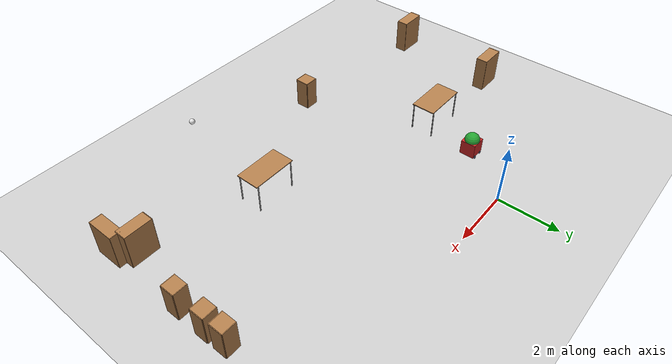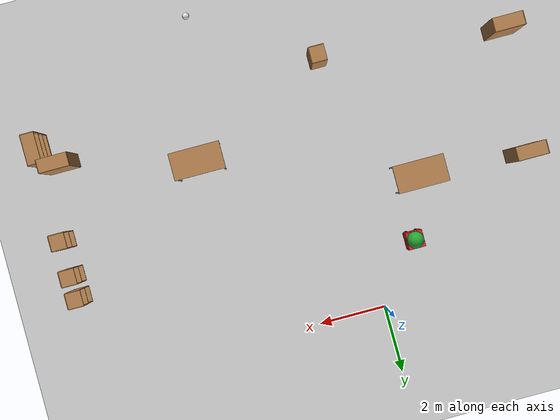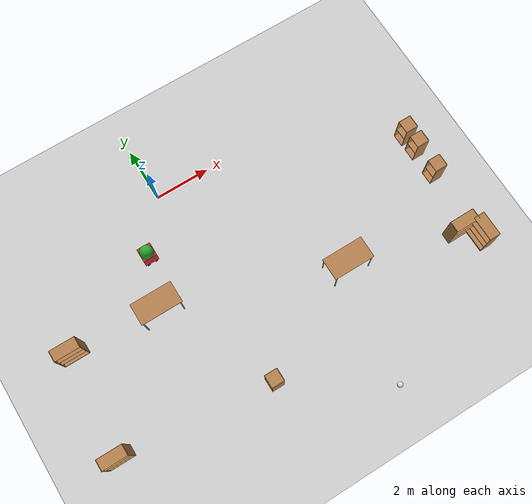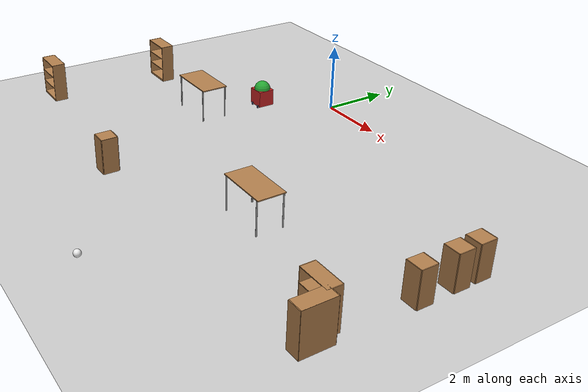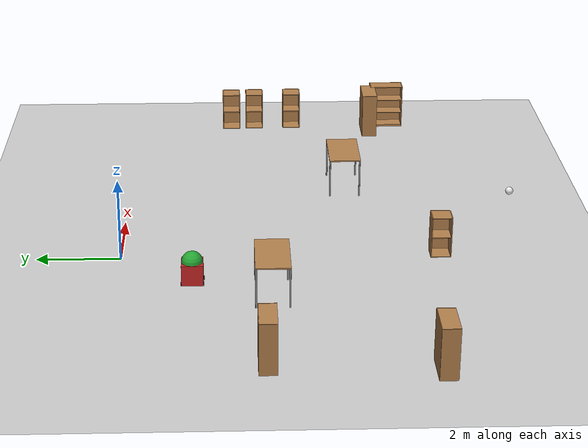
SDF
<sdf version="1.6">
 <world name="default">
  <model name="ground_plane">
   <static>1</static>
   <link name="link">
    <collision name="collision">
     <geometry><plane><normal>0 0 1</normal><size>100 100</size></plane></geometry>
     <surface><friction><ode><mu>100</mu><mu2>50</mu2></ode></friction></surface>
    </collision>
    <visual name="visual">
     <cast_shadows>0</cast_shadows>
     <geometry><plane><normal>0 0 1</normal><size>100 100</size></plane></geometry>
     <material>
      <script><uri>file://media/materials/scripts/gazebo.material</uri><name>Gazebo/Grey</name></script>
     </material>
    </visual>
   </link>
  </model>
  <model name="simplebot">
   <link name="robot_link">
    <pose>0 0 0.3 0 -0 0</pose>
    <inertial>
     <mass>1</mass>
     <inertia><ixx>1</ixx><ixy>0</ixy><ixz>0</ixz><iyy>1</iyy><iyz>0</iyz><izz>1</izz></inertia>
    </inertial>
    <visual name="head_visual">
     <pose>0 0 0.25 0 0 -2.5</pose>
     <geometry><sphere><radius>0.25</radius></sphere></geometry>
     <material>
      <shader type="pixel"><normal_map>__default__</normal_map></shader>
      <emissive>0 0 0 1</emissive>
      <ambient>0.3 0.3 0.3 1</ambient>
      <diffuse>0.7 0.7 0.7 1</diffuse>
      <specular>0.01 0.01 0.01 1</specular>
      <script><uri>file://media/materials/scripts/gazebo.material</uri><name>Gazebo/Green</name></script>
     </material>
    </visual>
    <visual name="body_visual">
     <geometry><box><size>0.5 0.5 0.5</size></box></geometry>
     <material>
      <shader type="pixel"><normal_map>__default__</normal_map></shader>
      <emissive>0 0 0 1</emissive>
      <ambient>1 0 0 1</ambient>
      <diffuse>1 0 0 1</diffuse>
      <specular>0.1 0.1 0.1 1</specular>
      <script><uri>file://media/materials/scripts/gazebo.material</uri><name>Gazebo/Red</name></script>
     </material>
    </visual>
    <visual name="power_led_visual">
     <pose>0.225 0.225 0.25 0 -0 0</pose>
     <geometry><sphere><radius>0.003</radius></sphere></geometry>
     <material>
      <ambient>0 0 0 1</ambient>
      <diffuse>0 0 0 1</diffuse>
      <specular>0 0 0 1</specular>
      <emissive>0 1 0 1</emissive>
     </material>
    </visual>
    <collision name="body_collision">
     <geometry><box><size>0.5 0.5 0.5</size></box></geometry>
     <surface>
      <friction>
       <ode><mu>1</mu><mu2>1</mu2><fdir1>0 0 0</fdir1><slip1>0</slip1><slip2>0</slip2></ode>
       <torsional>
        <coefficient>1</coefficient>
        <patch_radius>0</patch_radius>
        <surface_radius>0</surface_radius>
        <use_patch_radius>1</use_patch_radius>
        <ode><slip>0</slip></ode>
       </torsional>
      </friction>
      <bounce><restitution_coefficient>0</restitution_coefficient><threshold>1e+06</threshold></bounce>
      <contact>
       <collide_without_contact>0</collide_without_contact>
       <collide_without_contact_bitmask>1</collide_without_contact_bitmask>
       <collide_bitmask>1</collide_bitmask>
       <ode>
        <soft_cfm>0</soft_cfm>
        <soft_erp>0.2</soft_erp>
        <kp>1e+13</kp>
        <kd>1</kd>
        <max_vel>0.01</max_vel>
        <min_depth>0</min_depth>
       </ode>
       <bullet>
        <split_impulse>1</split_impulse>
        <split_impulse_penetration_threshold>-0.01</split_impulse_penetration_threshold>
        <soft_cfm>0</soft_cfm>
        <soft_erp>0.2</soft_erp>
        <kp>1e+13</kp>
        <kd>1</kd>
       </bullet>
      </contact>
     </surface>
    </collision>
   </link>
   <link name="wheel_1">
    <pose>0.15 -0.26 0.05 1.5707 -0 0</pose>
    <inertial>
     <mass>1</mass>
     <inertia><ixx>0.145833</ixx><ixy>0</ixy><ixz>0</ixz><iyy>0.145833</iyy><iyz>0</iyz><izz>0.125</izz></inertia>
    </inertial>
    <visual name="visual">
     <geometry><cylinder><radius>0.05</radius><length>0.02</length></cylinder></geometry>
     <material>
      <lighting>1</lighting>
      <script><uri>file://media/materials/scripts/gazebo.material</uri><name>Gazebo/Grey</name></script>
      <shader type="pixel"><normal_map>__default__</normal_map></shader>
      <ambient>0.1 0.1 0.1 1</ambient>
      <diffuse>0.1 0.1 0.2 1</diffuse>
      <specular>0.01 0.01 0.01 1</specular>
      <emissive>0 0 0 1</emissive>
     </material>
    </visual>
    <collision name="collision">
     <geometry><cylinder><radius>0.05</radius><length>0.02</length></cylinder></geometry>
     <surface>
      <friction>
       <ode><mu>1</mu><mu2>1</mu2><fdir1>0 0 0</fdir1><slip1>0</slip1><slip2>0</slip2></ode>
       <torsional>
        <coefficient>1</coefficient>
        <patch_radius>0</patch_radius>
        <surface_radius>0</surface_radius>
        <use_patch_radius>1</use_patch_radius>
        <ode><slip>0</slip></ode>
       </torsional>
      </friction>
      <bounce><restitution_coefficient>0</restitution_coefficient><threshold>1e+06</threshold></bounce>
      <contact>
       <collide_without_contact>0</collide_without_contact>
       <collide_without_contact_bitmask>1</collide_without_contact_bitmask>
       <collide_bitmask>1</collide_bitmask>
       <ode>
        <soft_cfm>0</soft_cfm>
        <soft_erp>0.2</soft_erp>
        <kp>1e+13</kp>
        <kd>1</kd>
        <max_vel>0.01</max_vel>
        <min_depth>0</min_depth>
       </ode>
       <bullet>
        <split_impulse>1</split_impulse>
        <split_impulse_penetration_threshold>-0.01</split_impulse_penetration_threshold>
        <soft_cfm>0</soft_cfm>
        <soft_erp>0.2</soft_erp>
        <kp>1e+13</kp>
        <kd>1</kd>
       </bullet>
      </contact>
     </surface>
    </collision>
   </link>
   <link name="wheel_2">
    <pose>0.15 0.26 0.05 1.5707 -0 0</pose>
    <inertial>
     <mass>1</mass>
     <inertia><ixx>0.145833</ixx><ixy>0</ixy><ixz>0</ixz><iyy>0.145833</iyy><iyz>0</iyz><izz>0.125</izz></inertia>
    </inertial>
    <visual name="visual">
     <geometry><cylinder><radius>0.05</radius><length>0.02</length></cylinder></geometry>
     <material>
      <lighting>1</lighting>
      <script><uri>file://media/materials/scripts/gazebo.material</uri><name>Gazebo/Grey</name></script>
      <shader type="pixel"><normal_map>__default__</normal_map></shader>
      <ambient>0.1 0.1 0.1 1</ambient>
      <diffuse>0.1 0.1 0.2 1</diffuse>
      <specular>0.01 0.01 0.01 1</specular>
      <emissive>0 0 0 1</emissive>
     </material>
    </visual>
    <collision name="collision">
     <geometry><cylinder><radius>0.05</radius><length>0.02</length></cylinder></geometry>
     <surface>
      <friction>
       <ode><mu>1</mu><mu2>1</mu2><fdir1>0 0 0</fdir1><slip1>0</slip1><slip2>0</slip2></ode>
       <torsional>
        <coefficient>1</coefficient>
        <patch_radius>0</patch_radius>
        <surface_radius>0</surface_radius>
        <use_patch_radius>1</use_patch_radius>
        <ode><slip>0</slip></ode>
       </torsional>
      </friction>
      <bounce><restitution_coefficient>0</restitution_coefficient><threshold>1e+06</threshold></bounce>
      <contact>
       <collide_without_contact>0</collide_without_contact>
       <collide_without_contact_bitmask>1</collide_without_contact_bitmask>
       <collide_bitmask>1</collide_bitmask>
       <ode>
        <soft_cfm>0</soft_cfm>
        <soft_erp>0.2</soft_erp>
        <kp>1e+13</kp>
        <kd>1</kd>
        <max_vel>0.01</max_vel>
        <min_depth>0</min_depth>
       </ode>
       <bullet>
        <split_impulse>1</split_impulse>
        <split_impulse_penetration_threshold>-0.01</split_impulse_penetration_threshold>
        <soft_cfm>0</soft_cfm>
        <soft_erp>0.2</soft_erp>
        <kp>1e+13</kp>
        <kd>1</kd>
       </bullet>
      </contact>
     </surface>
    </collision>
   </link>
   <link name="wheel_3">
    <pose>-0.15 -0.26 0.05 1.5707 -0 0</pose>
    <inertial>
     <mass>1</mass>
     <inertia><ixx>0.145833</ixx><ixy>0</ixy><ixz>0</ixz><iyy>0.145833</iyy><iyz>0</iyz><izz>0.125</izz></inertia>
    </inertial>
    <visual name="visual">
     <geometry><cylinder><radius>0.05</radius><length>0.02</length></cylinder></geometry>
     <material>
      <lighting>1</lighting>
      <script><uri>file://media/materials/scripts/gazebo.material</uri><name>Gazebo/Grey</name></script>
      <shader type="pixel"><normal_map>__default__</normal_map></shader>
      <ambient>0.1 0.1 0.1 1</ambient>
      <diffuse>0.1 0.1 0.2 1</diffuse>
      <specular>0.01 0.01 0.01 1</specular>
      <emissive>0 0 0 1</emissive>
     </material>
    </visual>
    <collision name="collision">
     <geometry><cylinder><radius>0.05</radius><length>0.02</length></cylinder></geometry>
     <surface>
      <friction>
       <ode><mu>1</mu><mu2>1</mu2><fdir1>0 0 0</fdir1><slip1>0</slip1><slip2>0</slip2></ode>
       <torsional>
        <coefficient>1</coefficient>
        <patch_radius>0</patch_radius>
        <surface_radius>0</surface_radius>
        <use_patch_radius>1</use_patch_radius>
        <ode><slip>0</slip></ode>
       </torsional>
      </friction>
      <bounce><restitution_coefficient>0</restitution_coefficient><threshold>1e+06</threshold></bounce>
      <contact>
       <collide_without_contact>0</collide_without_contact>
       <collide_without_contact_bitmask>1</collide_without_contact_bitmask>
       <collide_bitmask>1</collide_bitmask>
       <ode>
        <soft_cfm>0</soft_cfm>
        <soft_erp>0.2</soft_erp>
        <kp>1e+13</kp>
        <kd>1</kd>
        <max_vel>0.01</max_vel>
        <min_depth>0</min_depth>
       </ode>
       <bullet>
        <split_impulse>1</split_impulse>
        <split_impulse_penetration_threshold>-0.01</split_impulse_penetration_threshold>
        <soft_cfm>0</soft_cfm>
        <soft_erp>0.2</soft_erp>
        <kp>1e+13</kp>
        <kd>1</kd>
       </bullet>
      </contact>
     </surface>
    </collision>
   </link>
   <link name="wheel_4">
    <pose>-0.15 0.26 0.05 1.5707 -0 0</pose>
    <inertial>
     <mass>1</mass>
     <inertia><ixx>0.145833</ixx><ixy>0</ixy><ixz>0</ixz><iyy>0.145833</iyy><iyz>0</iyz><izz>0.125</izz></inertia>
    </inertial>
    <visual name="visual">
     <geometry><cylinder><radius>0.05</radius><length>0.02</length></cylinder></geometry>
     <material>
      <lighting>1</lighting>
      <script><uri>file://media/materials/scripts/gazebo.material</uri><name>Gazebo/Grey</name></script>
      <shader type="pixel"><normal_map>__default__</normal_map></shader>
      <ambient>0.1 0.1 0.1 1</ambient>
      <diffuse>0.1 0.1 0.2 1</diffuse>
      <specular>0.01 0.01 0.01 1</specular>
      <emissive>0 0 0 1</emissive>
     </material>
    </visual>
    <collision name="collision">
     <geometry><cylinder><radius>0.05</radius><length>0.02</length></cylinder></geometry>
     <surface>
      <friction>
       <ode><mu>1</mu><mu2>1</mu2><fdir1>0 0 0</fdir1><slip1>0</slip1><slip2>0</slip2></ode>
       <torsional>
        <coefficient>1</coefficient>
        <patch_radius>0</patch_radius>
        <surface_radius>0</surface_radius>
        <use_patch_radius>1</use_patch_radius>
        <ode><slip>0</slip></ode>
       </torsional>
      </friction>
      <bounce><restitution_coefficient>0</restitution_coefficient><threshold>1e+06</threshold></bounce>
      <contact>
       <collide_without_contact>0</collide_without_contact>
       <collide_without_contact_bitmask>1</collide_without_contact_bitmask>
       <collide_bitmask>1</collide_bitmask>
       <ode>
        <soft_cfm>0</soft_cfm>
        <soft_erp>0.2</soft_erp>
        <kp>1e+13</kp>
        <kd>1</kd>
        <max_vel>0.01</max_vel>
        <min_depth>0</min_depth>
       </ode>
       <bullet>
        <split_impulse>1</split_impulse>
        <split_impulse_penetration_threshold>-0.01</split_impulse_penetration_threshold>
        <soft_cfm>0</soft_cfm>
        <soft_erp>0.2</soft_erp>
        <kp>1e+13</kp>
        <kd>1</kd>
       </bullet>
      </contact>
     </surface>
    </collision>
   </link>
   <joint name="robot_link_JOINT_0" type="revolute">
    <parent>robot_link</parent>
    <child>wheel_1</child>
    <axis>
     <xyz>0 0 1</xyz>
     <use_parent_model_frame>0</use_parent_model_frame>
     <limit>
      <lower>-1.79769e+308</lower>
      <upper>1.79769e+308</upper>
      <effort>-1</effort>
      <velocity>-1</velocity>
     </limit>
     <dynamics>
      <spring_reference>0</spring_reference>
      <spring_stiffness>0</spring_stiffness>
      <damping>0</damping>
      <friction>0</friction>
     </dynamics>
    </axis>
    <physics>
     <ode><limit><cfm>0</cfm><erp>0.2</erp></limit><suspension><cfm>0</cfm><erp>0.2</erp></suspension></ode>
    </physics>
   </joint>
   <joint name="robot_link_JOINT_2" type="revolute">
    <parent>robot_link</parent>
    <child>wheel_2</child>
    <axis>
     <xyz>0 0 1</xyz>
     <use_parent_model_frame>0</use_parent_model_frame>
     <limit>
      <lower>-1.79769e+308</lower>
      <upper>1.79769e+308</upper>
      <effort>-1</effort>
      <velocity>-1</velocity>
     </limit>
     <dynamics>
      <spring_reference>0</spring_reference>
      <spring_stiffness>0</spring_stiffness>
      <damping>0</damping>
      <friction>0</friction>
     </dynamics>
    </axis>
    <physics>
     <ode><limit><cfm>0</cfm><erp>0.2</erp></limit><suspension><cfm>0</cfm><erp>0.2</erp></suspension></ode>
    </physics>
   </joint>
   <joint name="robot_link_JOINT_3" type="revolute">
    <parent>robot_link</parent>
    <child>wheel_3</child>
    <axis>
     <xyz>0 0 1</xyz>
     <use_parent_model_frame>0</use_parent_model_frame>
     <limit>
      <lower>-1.79769e+308</lower>
      <upper>1.79769e+308</upper>
      <effort>-1</effort>
      <velocity>-1</velocity>
     </limit>
     <dynamics>
      <spring_reference>0</spring_reference>
      <spring_stiffness>0</spring_stiffness>
      <damping>0</damping>
      <friction>0</friction>
     </dynamics>
    </axis>
    <physics>
     <ode><limit><cfm>0</cfm><erp>0.2</erp></limit><suspension><cfm>0</cfm><erp>0.2</erp></suspension></ode>
    </physics>
   </joint>
   <joint name="robot_link_JOINT_4" type="revolute">
    <parent>robot_link</parent>
    <child>wheel_4</child>
    <axis>
     <xyz>0 0 1</xyz>
     <use_parent_model_frame>0</use_parent_model_frame>
     <limit>
      <lower>-1.79769e+308</lower>
      <upper>1.79769e+308</upper>
      <effort>-1</effort>
      <velocity>-1</velocity>
     </limit>
     <dynamics>
      <spring_reference>0</spring_reference>
      <spring_stiffness>0</spring_stiffness>
      <damping>0</damping>
      <friction>0</friction>
     </dynamics>
    </axis>
    <physics>
     <ode><limit><cfm>0</cfm><erp>0.2</erp></limit><suspension><cfm>0</cfm><erp>0.2</erp></suspension></ode>
    </physics>
   </joint>
   <static>1</static>
   <pose>-1.30562 -1.73225 0 0 -0 0</pose>
  </model>
  <model name="bookshelf">
   <static>1</static>
   <link name="link">
    <inertial><mass>1</mass></inertial>
    <collision name="back">
     <pose>0 0.005 0.6 0 -0 0</pose>
     <geometry><box><size>0.9 0.01 1.2</size></box></geometry>
    </collision>
    <visual name="visual1">
     <pose>0 0.005 0.6 0 -0 0</pose>
     <geometry><box><size>0.9 0.01 1.2</size></box></geometry>
     <material>
      <script><uri>file://media/materials/scripts/gazebo.material</uri><name>Gazebo/Wood</name></script>
     </material>
    </visual>
    <collision name="left_side">
     <pose>0.45 -0.195 0.6 0 -0 0</pose>
     <geometry><box><size>0.02 0.4 1.2</size></box></geometry>
    </collision>
    <visual name="visual2">
     <pose>0.45 -0.195 0.6 0 -0 0</pose>
     <geometry><box><size>0.02 0.4 1.2</size></box></geometry>
     <material>
      <script><uri>file://media/materials/scripts/gazebo.material</uri><name>Gazebo/Wood</name></script>
     </material>
    </visual>
    <collision name="right_side">
     <pose>-0.45 -0.195 0.6 0 -0 0</pose>
     <geometry><box><size>0.02 0.4 1.2</size></box></geometry>
    </collision>
    <visual name="visual3">
     <pose>-0.45 -0.195 0.6 0 -0 0</pose>
     <geometry><box><size>0.02 0.4 1.2</size></box></geometry>
     <material>
      <script><uri>file://media/materials/scripts/gazebo.material</uri><name>Gazebo/Wood</name></script>
     </material>
    </visual>
    <collision name="bottom">
     <pose>0 -0.195 0.03 0 -0 0</pose>
     <geometry><box><size>0.88 0.4 0.06</size></box></geometry>
    </collision>
    <visual name="visual4">
     <pose>0 -0.195 0.03 0 -0 0</pose>
     <geometry><box><size>0.88 0.4 0.06</size></box></geometry>
     <material>
      <script><uri>file://media/materials/scripts/gazebo.material</uri><name>Gazebo/Wood</name></script>
     </material>
    </visual>
    <collision name="top">
     <pose>0 -0.195 1.19 0 -0 0</pose>
     <geometry><box><size>0.88 0.4 0.02</size></box></geometry>
    </collision>
    <visual name="visual5">
     <pose>0 -0.195 1.19 0 -0 0</pose>
     <geometry><box><size>0.88 0.4 0.02</size></box></geometry>
     <material>
      <script><uri>file://media/materials/scripts/gazebo.material</uri><name>Gazebo/Wood</name></script>
     </material>
    </visual>
    <collision name="low_shelf">
     <pose>0 -0.195 0.43 0 -0 0</pose>
     <geometry><box><size>0.88 0.4 0.02</size></box></geometry>
    </collision>
    <visual name="visual6">
     <pose>0 -0.195 0.43 0 -0 0</pose>
     <geometry><box><size>0.88 0.4 0.02</size></box></geometry>
     <material>
      <script><uri>file://media/materials/scripts/gazebo.material</uri><name>Gazebo/Wood</name></script>
     </material>
    </visual>
    <collision name="high_shelf">
     <pose>0 -0.195 0.8 0 -0 0</pose>
     <geometry><box><size>0.88 0.4 0.02</size></box></geometry>
    </collision>
    <visual name="visual7">
     <pose>0 -0.195 0.8 0 -0 0</pose>
     <geometry><box><size>0.88 0.4 0.02</size></box></geometry>
     <material>
      <script><uri>file://media/materials/scripts/gazebo.material</uri><name>Gazebo/Wood</name></script>
     </material>
    </visual>
   </link>
   <pose>-5.03651 -3.18166 0 0 -0 0</pose>
  </model>
  <model name="cabinet_0">
   <static>1</static>
   <link name="cabinet_bottom_plate">
    <inertial>
     <pose>0 0 -1 0 -0 0</pose>
     <inertia><ixx>2.05</ixx><ixy>0</ixy><ixz>0</ixz><iyy>2.05</iyy><iyz>0</iyz><izz>2.05</izz></inertia>
     <mass>25</mass>
    </inertial>
    <collision name="cabinet_bottom_plate_geom">
     <pose>0 0 0.01 0 -0 0</pose>
     <geometry><box><size>0.45 0.45 0.02</size></box></geometry>
    </collision>
    <visual name="cabinet_bottom_plate_geom_visual">
     <pose>0 0 0.01 0 -0 0</pose>
     <geometry><box><size>0.45 0.45 0.02</size></box></geometry>
     <material>
      <script><uri>file://media/materials/scripts/gazebo.material</uri><name>Gazebo/Wood</name></script>
     </material>
    </visual>
    <collision name="cabinet_bottom_plate_geom_cabinet_back_plate">
     <pose>0.235 0 0.51 0 -0 0</pose>
     <geometry><box><size>0.02 0.45 1.02</size></box></geometry>
    </collision>
    <visual name="cabinet_bottom_plate_geom_cabinet_back_plate_visual">
     <pose>0.235 0 0.51 0 -0 0</pose>
     <geometry><box><size>0.02 0.45 1.02</size></box></geometry>
     <material>
      <script><uri>file://media/materials/scripts/gazebo.material</uri><name>Gazebo/Wood</name></script>
     </material>
    </visual>
    <collision name="cabinet_bottom_plate_geom_cabinet_left_plate">
     <pose>0 0.235 0.51 0 -0 0</pose>
     <geometry><box><size>0.45 0.02 1.02</size></box></geometry>
    </collision>
    <visual name="cabinet_bottom_plate_geom_cabinet_left_plate_visual">
     <pose>0 0.235 0.51 0 -0 0</pose>
     <geometry><box><size>0.45 0.02 1.02</size></box></geometry>
     <material>
      <script><uri>file://media/materials/scripts/gazebo.material</uri><name>Gazebo/Wood</name></script>
     </material>
    </visual>
    <collision name="cabinet_bottom_plate_geom_cabinet_middle_plate">
     <pose>0 0 0.51 0 -0 0</pose>
     <geometry><box><size>0.45 0.45 0.02</size></box></geometry>
    </collision>
    <visual name="cabinet_bottom_plate_geom_cabinet_middle_plate_visual">
     <pose>0 0 0.51 0 -0 0</pose>
     <geometry><box><size>0.45 0.45 0.02</size></box></geometry>
     <material>
      <script><uri>file://media/materials/scripts/gazebo.material</uri><name>Gazebo/Wood</name></script>
     </material>
    </visual>
    <collision name="cabinet_bottom_plate_geom_cabinet_right_plate">
     <pose>0 -0.235 0.51 0 -0 0</pose>
     <geometry><box><size>0.45 0.02 1.02</size></box></geometry>
    </collision>
    <visual name="cabinet_bottom_plate_geom_cabinet_right_plate_visual">
     <pose>0 -0.235 0.51 0 -0 0</pose>
     <geometry><box><size>0.45 0.02 1.02</size></box></geometry>
     <material>
      <script><uri>file://media/materials/scripts/gazebo.material</uri><name>Gazebo/Wood</name></script>
     </material>
    </visual>
    <collision name="cabinet_bottom_plate_geom_cabinet_top_plate">
     <pose>0 0 1.01 0 -0 0</pose>
     <geometry><box><size>0.45 0.45 0.02</size></box></geometry>
    </collision>
    <visual name="cabinet_bottom_plate_geom_cabinet_top_plate_visual">
     <pose>0 0 1.01 0 -0 0</pose>
     <geometry><box><size>0.45 0.45 0.02</size></box></geometry>
     <material>
      <script><uri>file://media/materials/scripts/gazebo.material</uri><name>Gazebo/Wood</name></script>
     </material>
    </visual>
   </link>
   <pose>8.57337 -2.65087 0 0 -0 0</pose>
  </model>
  <model name="table">
   <static>1</static>
   <link name="link">
    <collision name="surface">
     <pose>0 0 1 0 -0 0</pose>
     <geometry><box><size>1.5 0.8 0.03</size></box></geometry>
     <surface><friction><ode><mu>0.6</mu><mu2>0.6</mu2></ode></friction></surface>
    </collision>
    <visual name="visual1">
     <pose>0 0 1 0 -0 0</pose>
     <geometry><box><size>1.5 0.8 0.03</size></box></geometry>
     <material>
      <script><uri>file://media/materials/scripts/gazebo.material</uri><name>Gazebo/Wood</name></script>
     </material>
    </visual>
    <collision name="front_left_leg">
     <pose>0.68 0.38 0.5 0 -0 0</pose>
     <geometry><cylinder><radius>0.02</radius><length>1</length></cylinder></geometry>
    </collision>
    <visual name="front_left_leg">
     <pose>0.68 0.38 0.5 0 -0 0</pose>
     <geometry><cylinder><radius>0.02</radius><length>1</length></cylinder></geometry>
     <material>
      <script><uri>file://media/materials/scripts/gazebo.material</uri><name>Gazebo/Grey</name></script>
     </material>
    </visual>
    <collision name="front_right_leg">
     <pose>0.68 -0.38 0.5 0 -0 0</pose>
     <geometry><cylinder><radius>0.02</radius><length>1</length></cylinder></geometry>
    </collision>
    <visual name="front_right_leg">
     <pose>0.68 -0.38 0.5 0 -0 0</pose>
     <geometry><cylinder><radius>0.02</radius><length>1</length></cylinder></geometry>
     <material>
      <script><uri>file://media/materials/scripts/gazebo.material</uri><name>Gazebo/Grey</name></script>
     </material>
    </visual>
    <collision name="back_right_leg">
     <pose>-0.68 -0.38 0.5 0 -0 0</pose>
     <geometry><cylinder><radius>0.02</radius><length>1</length></cylinder></geometry>
    </collision>
    <visual name="back_right_leg">
     <pose>-0.68 -0.38 0.5 0 -0 0</pose>
     <geometry><cylinder><radius>0.02</radius><length>1</length></cylinder></geometry>
     <material>
      <script><uri>file://media/materials/scripts/gazebo.material</uri><name>Gazebo/Grey</name></script>
     </material>
    </visual>
    <collision name="back_left_leg">
     <pose>-0.68 0.38 0.5 0 -0 0</pose>
     <geometry><cylinder><radius>0.02</radius><length>1</length></cylinder></geometry>
    </collision>
    <visual name="back_left_leg">
     <pose>-0.68 0.38 0.5 0 -0 0</pose>
     <geometry><cylinder><radius>0.02</radius><length>1</length></cylinder></geometry>
     <material>
      <script><uri>file://media/materials/scripts/gazebo.material</uri><name>Gazebo/Grey</name></script>
     </material>
    </visual>
   </link>
   <pose>4.18646 -5.56341 0 0 -0 0</pose>
  </model>
  <model name="cabinet_1">
   <static>1</static>
   <link name="cabinet_bottom_plate">
    <inertial>
     <pose>0 0 -1 0 -0 0</pose>
     <inertia><ixx>2.05</ixx><ixy>0</ixy><ixz>0</ixz><iyy>2.05</iyy><iyz>0</iyz><izz>2.05</izz></inertia>
     <mass>25</mass>
    </inertial>
    <collision name="cabinet_bottom_plate_geom">
     <pose>0 0 0.01 0 -0 0</pose>
     <geometry><box><size>0.45 0.45 0.02</size></box></geometry>
    </collision>
    <visual name="cabinet_bottom_plate_geom_visual">
     <pose>0 0 0.01 0 -0 0</pose>
     <geometry><box><size>0.45 0.45 0.02</size></box></geometry>
     <material>
      <script><uri>file://media/materials/scripts/gazebo.material</uri><name>Gazebo/Wood</name></script>
     </material>
    </visual>
    <collision name="cabinet_bottom_plate_geom_cabinet_back_plate">
     <pose>0.235 0 0.51 0 -0 0</pose>
     <geometry><box><size>0.02 0.45 1.02</size></box></geometry>
    </collision>
    <visual name="cabinet_bottom_plate_geom_cabinet_back_plate_visual">
     <pose>0.235 0 0.51 0 -0 0</pose>
     <geometry><box><size>0.02 0.45 1.02</size></box></geometry>
     <material>
      <script><uri>file://media/materials/scripts/gazebo.material</uri><name>Gazebo/Wood</name></script>
     </material>
    </visual>
    <collision name="cabinet_bottom_plate_geom_cabinet_left_plate">
     <pose>0 0.235 0.51 0 -0 0</pose>
     <geometry><box><size>0.45 0.02 1.02</size></box></geometry>
    </collision>
    <visual name="cabinet_bottom_plate_geom_cabinet_left_plate_visual">
     <pose>0 0.235 0.51 0 -0 0</pose>
     <geometry><box><size>0.45 0.02 1.02</size></box></geometry>
     <material>
      <script><uri>file://media/materials/scripts/gazebo.material</uri><name>Gazebo/Wood</name></script>
     </material>
    </visual>
    <collision name="cabinet_bottom_plate_geom_cabinet_middle_plate">
     <pose>0 0 0.51 0 -0 0</pose>
     <geometry><box><size>0.45 0.45 0.02</size></box></geometry>
    </collision>
    <visual name="cabinet_bottom_plate_geom_cabinet_middle_plate_visual">
     <pose>0 0 0.51 0 -0 0</pose>
     <geometry><box><size>0.45 0.45 0.02</size></box></geometry>
     <material>
      <script><uri>file://media/materials/scripts/gazebo.material</uri><name>Gazebo/Wood</name></script>
     </material>
    </visual>
    <collision name="cabinet_bottom_plate_geom_cabinet_right_plate">
     <pose>0 -0.235 0.51 0 -0 0</pose>
     <geometry><box><size>0.45 0.02 1.02</size></box></geometry>
    </collision>
    <visual name="cabinet_bottom_plate_geom_cabinet_right_plate_visual">
     <pose>0 -0.235 0.51 0 -0 0</pose>
     <geometry><box><size>0.45 0.02 1.02</size></box></geometry>
     <material>
      <script><uri>file://media/materials/scripts/gazebo.material</uri><name>Gazebo/Wood</name></script>
     </material>
    </visual>
    <collision name="cabinet_bottom_plate_geom_cabinet_top_plate">
     <pose>0 0 1.01 0 -0 0</pose>
     <geometry><box><size>0.45 0.45 0.02</size></box></geometry>
    </collision>
    <visual name="cabinet_bottom_plate_geom_cabinet_top_plate_visual">
     <pose>0 0 1.01 0 -0 0</pose>
     <geometry><box><size>0.45 0.45 0.02</size></box></geometry>
     <material>
      <script><uri>file://media/materials/scripts/gazebo.material</uri><name>Gazebo/Wood</name></script>
     </material>
    </visual>
   </link>
   <pose>0.07076 -7.61077 0 0 -0 0</pose>
  </model>
  <model name="table_0">
   <static>1</static>
   <link name="link">
    <collision name="surface">
     <pose>0 0 1 0 -0 0</pose>
     <geometry><box><size>1.5 0.8 0.03</size></box></geometry>
     <surface><friction><ode><mu>0.6</mu><mu2>0.6</mu2></ode></friction></surface>
    </collision>
    <visual name="visual1">
     <pose>0 0 1 0 -0 0</pose>
     <geometry><box><size>1.5 0.8 0.03</size></box></geometry>
     <material>
      <script><uri>file://media/materials/scripts/gazebo.material</uri><name>Gazebo/Wood</name></script>
     </material>
    </visual>
    <collision name="front_left_leg">
     <pose>0.68 0.38 0.5 0 -0 0</pose>
     <geometry><cylinder><radius>0.02</radius><length>1</length></cylinder></geometry>
    </collision>
    <visual name="front_left_leg">
     <pose>0.68 0.38 0.5 0 -0 0</pose>
     <geometry><cylinder><radius>0.02</radius><length>1</length></cylinder></geometry>
     <material>
      <script><uri>file://media/materials/scripts/gazebo.material</uri><name>Gazebo/Grey</name></script>
     </material>
    </visual>
    <collision name="front_right_leg">
     <pose>0.68 -0.38 0.5 0 -0 0</pose>
     <geometry><cylinder><radius>0.02</radius><length>1</length></cylinder></geometry>
    </collision>
    <visual name="front_right_leg">
     <pose>0.68 -0.38 0.5 0 -0 0</pose>
     <geometry><cylinder><radius>0.02</radius><length>1</length></cylinder></geometry>
     <material>
      <script><uri>file://media/materials/scripts/gazebo.material</uri><name>Gazebo/Grey</name></script>
     </material>
    </visual>
    <collision name="back_right_leg">
     <pose>-0.68 -0.38 0.5 0 -0 0</pose>
     <geometry><cylinder><radius>0.02</radius><length>1</length></cylinder></geometry>
    </collision>
    <visual name="back_right_leg">
     <pose>-0.68 -0.38 0.5 0 -0 0</pose>
     <geometry><cylinder><radius>0.02</radius><length>1</length></cylinder></geometry>
     <material>
      <script><uri>file://media/materials/scripts/gazebo.material</uri><name>Gazebo/Grey</name></script>
     </material>
    </visual>
    <collision name="back_left_leg">
     <pose>-0.68 0.38 0.5 0 -0 0</pose>
     <geometry><cylinder><radius>0.02</radius><length>1</length></cylinder></geometry>
    </collision>
    <visual name="back_left_leg">
     <pose>-0.68 0.38 0.5 0 -0 0</pose>
     <geometry><cylinder><radius>0.02</radius><length>1</length></cylinder></geometry>
     <material>
      <script><uri>file://media/materials/scripts/gazebo.material</uri><name>Gazebo/Grey</name></script>
     </material>
    </visual>
   </link>
   <pose>-1.87763 -3.55435 0 0 -0 0</pose>
  </model>
  <model name="bookshelf_6">
   <static>1</static>
   <link name="link">
    <inertial><mass>1</mass></inertial>
    <collision name="back">
     <pose>0 0.005 0.6 0 -0 0</pose>
     <geometry><box><size>0.9 0.01 1.2</size></box></geometry>
    </collision>
    <visual name="visual1">
     <pose>0 0.005 0.6 0 -0 0</pose>
     <geometry><box><size>0.9 0.01 1.2</size></box></geometry>
     <material>
      <script><uri>file://media/materials/scripts/gazebo.material</uri><name>Gazebo/Wood</name></script>
     </material>
    </visual>
    <collision name="left_side">
     <pose>0.45 -0.195 0.6 0 -0 0</pose>
     <geometry><box><size>0.02 0.4 1.2</size></box></geometry>
    </collision>
    <visual name="visual2">
     <pose>0.45 -0.195 0.6 0 -0 0</pose>
     <geometry><box><size>0.02 0.4 1.2</size></box></geometry>
     <material>
      <script><uri>file://media/materials/scripts/gazebo.material</uri><name>Gazebo/Wood</name></script>
     </material>
    </visual>
    <collision name="right_side">
     <pose>-0.45 -0.195 0.6 0 -0 0</pose>
     <geometry><box><size>0.02 0.4 1.2</size></box></geometry>
    </collision>
    <visual name="visual3">
     <pose>-0.45 -0.195 0.6 0 -0 0</pose>
     <geometry><box><size>0.02 0.4 1.2</size></box></geometry>
     <material>
      <script><uri>file://media/materials/scripts/gazebo.material</uri><name>Gazebo/Wood</name></script>
     </material>
    </visual>
    <collision name="bottom">
     <pose>0 -0.195 0.03 0 -0 0</pose>
     <geometry><box><size>0.88 0.4 0.06</size></box></geometry>
    </collision>
    <visual name="visual4">
     <pose>0 -0.195 0.03 0 -0 0</pose>
     <geometry><box><size>0.88 0.4 0.06</size></box></geometry>
     <material>
      <script><uri>file://media/materials/scripts/gazebo.material</uri><name>Gazebo/Wood</name></script>
     </material>
    </visual>
    <collision name="top">
     <pose>0 -0.195 1.19 0 -0 0</pose>
     <geometry><box><size>0.88 0.4 0.02</size></box></geometry>
    </collision>
    <visual name="visual5">
     <pose>0 -0.195 1.19 0 -0 0</pose>
     <geometry><box><size>0.88 0.4 0.02</size></box></geometry>
     <material>
      <script><uri>file://media/materials/scripts/gazebo.material</uri><name>Gazebo/Wood</name></script>
     </material>
    </visual>
    <collision name="low_shelf">
     <pose>0 -0.195 0.43 0 -0 0</pose>
     <geometry><box><size>0.88 0.4 0.02</size></box></geometry>
    </collision>
    <visual name="visual6">
     <pose>0 -0.195 0.43 0 -0 0</pose>
     <geometry><box><size>0.88 0.4 0.02</size></box></geometry>
     <material>
      <script><uri>file://media/materials/scripts/gazebo.material</uri><name>Gazebo/Wood</name></script>
     </material>
    </visual>
    <collision name="high_shelf">
     <pose>0 -0.195 0.8 0 -0 0</pose>
     <geometry><box><size>0.88 0.4 0.02</size></box></geometry>
    </collision>
    <visual name="visual7">
     <pose>0 -0.195 0.8 0 -0 0</pose>
     <geometry><box><size>0.88 0.4 0.02</size></box></geometry>
     <material>
      <script><uri>file://media/materials/scripts/gazebo.material</uri><name>Gazebo/Wood</name></script>
     </material>
    </visual>
   </link>
   <pose>8.10809 -6.36163 0 0 -0 0</pose>
  </model>
  <model name="bookshelf_6_clone">
   <static>1</static>
   <link name="link">
    <inertial><mass>1</mass></inertial>
    <collision name="back">
     <pose>0 0.005 0.6 0 -0 0</pose>
     <geometry><box><size>0.9 0.01 1.2</size></box></geometry>
    </collision>
    <visual name="visual1">
     <pose>0 0.005 0.6 0 -0 0</pose>
     <geometry><box><size>0.9 0.01 1.2</size></box></geometry>
     <material>
      <script><uri>file://media/materials/scripts/gazebo.material</uri><name>Gazebo/Wood</name></script>
     </material>
    </visual>
    <collision name="left_side">
     <pose>0.45 -0.195 0.6 0 -0 0</pose>
     <geometry><box><size>0.02 0.4 1.2</size></box></geometry>
    </collision>
    <visual name="visual2">
     <pose>0.45 -0.195 0.6 0 -0 0</pose>
     <geometry><box><size>0.02 0.4 1.2</size></box></geometry>
     <material>
      <script><uri>file://media/materials/scripts/gazebo.material</uri><name>Gazebo/Wood</name></script>
     </material>
    </visual>
    <collision name="right_side">
     <pose>-0.45 -0.195 0.6 0 -0 0</pose>
     <geometry><box><size>0.02 0.4 1.2</size></box></geometry>
    </collision>
    <visual name="visual3">
     <pose>-0.45 -0.195 0.6 0 -0 0</pose>
     <geometry><box><size>0.02 0.4 1.2</size></box></geometry>
     <material>
      <script><uri>file://media/materials/scripts/gazebo.material</uri><name>Gazebo/Wood</name></script>
     </material>
    </visual>
    <collision name="bottom">
     <pose>0 -0.195 0.03 0 -0 0</pose>
     <geometry><box><size>0.88 0.4 0.06</size></box></geometry>
    </collision>
    <visual name="visual4">
     <pose>0 -0.195 0.03 0 -0 0</pose>
     <geometry><box><size>0.88 0.4 0.06</size></box></geometry>
     <material>
      <script><uri>file://media/materials/scripts/gazebo.material</uri><name>Gazebo/Wood</name></script>
     </material>
    </visual>
    <collision name="top">
     <pose>0 -0.195 1.19 0 -0 0</pose>
     <geometry><box><size>0.88 0.4 0.02</size></box></geometry>
    </collision>
    <visual name="visual5">
     <pose>0 -0.195 1.19 0 -0 0</pose>
     <geometry><box><size>0.88 0.4 0.02</size></box></geometry>
     <material>
      <script><uri>file://media/materials/scripts/gazebo.material</uri><name>Gazebo/Wood</name></script>
     </material>
    </visual>
    <collision name="low_shelf">
     <pose>0 -0.195 0.43 0 -0 0</pose>
     <geometry><box><size>0.88 0.4 0.02</size></box></geometry>
    </collision>
    <visual name="visual6">
     <pose>0 -0.195 0.43 0 -0 0</pose>
     <geometry><box><size>0.88 0.4 0.02</size></box></geometry>
     <material>
      <script><uri>file://media/materials/scripts/gazebo.material</uri><name>Gazebo/Wood</name></script>
     </material>
    </visual>
    <collision name="high_shelf">
     <pose>0 -0.195 0.8 0 -0 0</pose>
     <geometry><box><size>0.88 0.4 0.02</size></box></geometry>
    </collision>
    <visual name="visual7">
     <pose>0 -0.195 0.8 0 -0 0</pose>
     <geometry><box><size>0.88 0.4 0.02</size></box></geometry>
     <material>
      <script><uri>file://media/materials/scripts/gazebo.material</uri><name>Gazebo/Wood</name></script>
     </material>
    </visual>
   </link>
   <pose>8.79777 -7.09271 0 0 0 -1.56479</pose>
  </model>
  <model name="cabinet_6">
   <static>1</static>
   <link name="cabinet_bottom_plate">
    <inertial>
     <pose>0 0 -1 0 -0 0</pose>
     <inertia><ixx>2.05</ixx><ixy>0</ixy><ixz>0</ixz><iyy>2.05</iyy><iyz>0</iyz><izz>2.05</izz></inertia>
     <mass>25</mass>
    </inertial>
    <collision name="cabinet_bottom_plate_geom">
     <pose>0 0 0.01 0 -0 0</pose>
     <geometry><box><size>0.45 0.45 0.02</size></box></geometry>
    </collision>
    <visual name="cabinet_bottom_plate_geom_visual">
     <pose>0 0 0.01 0 -0 0</pose>
     <geometry><box><size>0.45 0.45 0.02</size></box></geometry>
     <material>
      <script><uri>file://media/materials/scripts/gazebo.material</uri><name>Gazebo/Wood</name></script>
     </material>
    </visual>
    <collision name="cabinet_bottom_plate_geom_cabinet_back_plate">
     <pose>0.235 0 0.51 0 -0 0</pose>
     <geometry><box><size>0.02 0.45 1.02</size></box></geometry>
    </collision>
    <visual name="cabinet_bottom_plate_geom_cabinet_back_plate_visual">
     <pose>0.235 0 0.51 0 -0 0</pose>
     <geometry><box><size>0.02 0.45 1.02</size></box></geometry>
     <material>
      <script><uri>file://media/materials/scripts/gazebo.material</uri><name>Gazebo/Wood</name></script>
     </material>
    </visual>
    <collision name="cabinet_bottom_plate_geom_cabinet_left_plate">
     <pose>0 0.235 0.51 0 -0 0</pose>
     <geometry><box><size>0.45 0.02 1.02</size></box></geometry>
    </collision>
    <visual name="cabinet_bottom_plate_geom_cabinet_left_plate_visual">
     <pose>0 0.235 0.51 0 -0 0</pose>
     <geometry><box><size>0.45 0.02 1.02</size></box></geometry>
     <material>
      <script><uri>file://media/materials/scripts/gazebo.material</uri><name>Gazebo/Wood</name></script>
     </material>
    </visual>
    <collision name="cabinet_bottom_plate_geom_cabinet_middle_plate">
     <pose>0 0 0.51 0 -0 0</pose>
     <geometry><box><size>0.45 0.45 0.02</size></box></geometry>
    </collision>
    <visual name="cabinet_bottom_plate_geom_cabinet_middle_plate_visual">
     <pose>0 0 0.51 0 -0 0</pose>
     <geometry><box><size>0.45 0.45 0.02</size></box></geometry>
     <material>
      <script><uri>file://media/materials/scripts/gazebo.material</uri><name>Gazebo/Wood</name></script>
     </material>
    </visual>
    <collision name="cabinet_bottom_plate_geom_cabinet_right_plate">
     <pose>0 -0.235 0.51 0 -0 0</pose>
     <geometry><box><size>0.45 0.02 1.02</size></box></geometry>
    </collision>
    <visual name="cabinet_bottom_plate_geom_cabinet_right_plate_visual">
     <pose>0 -0.235 0.51 0 -0 0</pose>
     <geometry><box><size>0.45 0.02 1.02</size></box></geometry>
     <material>
      <script><uri>file://media/materials/scripts/gazebo.material</uri><name>Gazebo/Wood</name></script>
     </material>
    </visual>
    <collision name="cabinet_bottom_plate_geom_cabinet_top_plate">
     <pose>0 0 1.01 0 -0 0</pose>
     <geometry><box><size>0.45 0.45 0.02</size></box></geometry>
    </collision>
    <visual name="cabinet_bottom_plate_geom_cabinet_top_plate_visual">
     <pose>0 0 1.01 0 -0 0</pose>
     <geometry><box><size>0.45 0.45 0.02</size></box></geometry>
     <material>
      <script><uri>file://media/materials/scripts/gazebo.material</uri><name>Gazebo/Wood</name></script>
     </material>
    </visual>
   </link>
   <pose>8.59078 -3.30078 0 0 -0 0</pose>
  </model>
  <model name="cabinet_7">
   <static>1</static>
   <link name="cabinet_bottom_plate">
    <inertial>
     <pose>0 0 -1 0 -0 0</pose>
     <inertia><ixx>2.05</ixx><ixy>0</ixy><ixz>0</ixz><iyy>2.05</iyy><iyz>0</iyz><izz>2.05</izz></inertia>
     <mass>25</mass>
    </inertial>
    <collision name="cabinet_bottom_plate_geom">
     <pose>0 0 0.01 0 -0 0</pose>
     <geometry><box><size>0.45 0.45 0.02</size></box></geometry>
    </collision>
    <visual name="cabinet_bottom_plate_geom_visual">
     <pose>0 0 0.01 0 -0 0</pose>
     <geometry><box><size>0.45 0.45 0.02</size></box></geometry>
     <material>
      <script><uri>file://media/materials/scripts/gazebo.material</uri><name>Gazebo/Wood</name></script>
     </material>
    </visual>
    <collision name="cabinet_bottom_plate_geom_cabinet_back_plate">
     <pose>0.235 0 0.51 0 -0 0</pose>
     <geometry><box><size>0.02 0.45 1.02</size></box></geometry>
    </collision>
    <visual name="cabinet_bottom_plate_geom_cabinet_back_plate_visual">
     <pose>0.235 0 0.51 0 -0 0</pose>
     <geometry><box><size>0.02 0.45 1.02</size></box></geometry>
     <material>
      <script><uri>file://media/materials/scripts/gazebo.material</uri><name>Gazebo/Wood</name></script>
     </material>
    </visual>
    <collision name="cabinet_bottom_plate_geom_cabinet_left_plate">
     <pose>0 0.235 0.51 0 -0 0</pose>
     <geometry><box><size>0.45 0.02 1.02</size></box></geometry>
    </collision>
    <visual name="cabinet_bottom_plate_geom_cabinet_left_plate_visual">
     <pose>0 0.235 0.51 0 -0 0</pose>
     <geometry><box><size>0.45 0.02 1.02</size></box></geometry>
     <material>
      <script><uri>file://media/materials/scripts/gazebo.material</uri><name>Gazebo/Wood</name></script>
     </material>
    </visual>
    <collision name="cabinet_bottom_plate_geom_cabinet_middle_plate">
     <pose>0 0 0.51 0 -0 0</pose>
     <geometry><box><size>0.45 0.45 0.02</size></box></geometry>
    </collision>
    <visual name="cabinet_bottom_plate_geom_cabinet_middle_plate_visual">
     <pose>0 0 0.51 0 -0 0</pose>
     <geometry><box><size>0.45 0.45 0.02</size></box></geometry>
     <material>
      <script><uri>file://media/materials/scripts/gazebo.material</uri><name>Gazebo/Wood</name></script>
     </material>
    </visual>
    <collision name="cabinet_bottom_plate_geom_cabinet_right_plate">
     <pose>0 -0.235 0.51 0 -0 0</pose>
     <geometry><box><size>0.45 0.02 1.02</size></box></geometry>
    </collision>
    <visual name="cabinet_bottom_plate_geom_cabinet_right_plate_visual">
     <pose>0 -0.235 0.51 0 -0 0</pose>
     <geometry><box><size>0.45 0.02 1.02</size></box></geometry>
     <material>
      <script><uri>file://media/materials/scripts/gazebo.material</uri><name>Gazebo/Wood</name></script>
     </material>
    </visual>
    <collision name="cabinet_bottom_plate_geom_cabinet_top_plate">
     <pose>0 0 1.01 0 -0 0</pose>
     <geometry><box><size>0.45 0.45 0.02</size></box></geometry>
    </collision>
    <visual name="cabinet_bottom_plate_geom_cabinet_top_plate_visual">
     <pose>0 0 1.01 0 -0 0</pose>
     <geometry><box><size>0.45 0.45 0.02</size></box></geometry>
     <material>
      <script><uri>file://media/materials/scripts/gazebo.material</uri><name>Gazebo/Wood</name></script>
     </material>
    </visual>
   </link>
   <pose>8.60132 -4.36 0 0 -0 0</pose>
  </model>
  <model name="bookshelf_7">
   <static>1</static>
   <link name="link">
    <inertial><mass>1</mass></inertial>
    <collision name="back">
     <pose>0 0.005 0.6 0 -0 0</pose>
     <geometry><box><size>0.9 0.01 1.2</size></box></geometry>
    </collision>
    <visual name="visual1">
     <pose>0 0.005 0.6 0 -0 0</pose>
     <geometry><box><size>0.9 0.01 1.2</size></box></geometry>
     <material>
      <script><uri>file://media/materials/scripts/gazebo.material</uri><name>Gazebo/Wood</name></script>
     </material>
    </visual>
    <collision name="left_side">
     <pose>0.45 -0.195 0.6 0 -0 0</pose>
     <geometry><box><size>0.02 0.4 1.2</size></box></geometry>
    </collision>
    <visual name="visual2">
     <pose>0.45 -0.195 0.6 0 -0 0</pose>
     <geometry><box><size>0.02 0.4 1.2</size></box></geometry>
     <material>
      <script><uri>file://media/materials/scripts/gazebo.material</uri><name>Gazebo/Wood</name></script>
     </material>
    </visual>
    <collision name="right_side">
     <pose>-0.45 -0.195 0.6 0 -0 0</pose>
     <geometry><box><size>0.02 0.4 1.2</size></box></geometry>
    </collision>
    <visual name="visual3">
     <pose>-0.45 -0.195 0.6 0 -0 0</pose>
     <geometry><box><size>0.02 0.4 1.2</size></box></geometry>
     <material>
      <script><uri>file://media/materials/scripts/gazebo.material</uri><name>Gazebo/Wood</name></script>
     </material>
    </visual>
    <collision name="bottom">
     <pose>0 -0.195 0.03 0 -0 0</pose>
     <geometry><box><size>0.88 0.4 0.06</size></box></geometry>
    </collision>
    <visual name="visual4">
     <pose>0 -0.195 0.03 0 -0 0</pose>
     <geometry><box><size>0.88 0.4 0.06</size></box></geometry>
     <material>
      <script><uri>file://media/materials/scripts/gazebo.material</uri><name>Gazebo/Wood</name></script>
     </material>
    </visual>
    <collision name="top">
     <pose>0 -0.195 1.19 0 -0 0</pose>
     <geometry><box><size>0.88 0.4 0.02</size></box></geometry>
    </collision>
    <visual name="visual5">
     <pose>0 -0.195 1.19 0 -0 0</pose>
     <geometry><box><size>0.88 0.4 0.02</size></box></geometry>
     <material>
      <script><uri>file://media/materials/scripts/gazebo.material</uri><name>Gazebo/Wood</name></script>
     </material>
    </visual>
    <collision name="low_shelf">
     <pose>0 -0.195 0.43 0 -0 0</pose>
     <geometry><box><size>0.88 0.4 0.02</size></box></geometry>
    </collision>
    <visual name="visual6">
     <pose>0 -0.195 0.43 0 -0 0</pose>
     <geometry><box><size>0.88 0.4 0.02</size></box></geometry>
     <material>
      <script><uri>file://media/materials/scripts/gazebo.material</uri><name>Gazebo/Wood</name></script>
     </material>
    </visual>
    <collision name="high_shelf">
     <pose>0 -0.195 0.8 0 -0 0</pose>
     <geometry><box><size>0.88 0.4 0.02</size></box></geometry>
    </collision>
    <visual name="visual7">
     <pose>0 -0.195 0.8 0 -0 0</pose>
     <geometry><box><size>0.88 0.4 0.02</size></box></geometry>
     <material>
      <script><uri>file://media/materials/scripts/gazebo.material</uri><name>Gazebo/Wood</name></script>
     </material>
    </visual>
   </link>
   <pose>-5.34769 -6.86288 0 0 -0 0</pose>
  </model>
  <model name="my_ball">
   <link name="link_0">
    <inertial>
     <mass>1</mass>
     <inertia><ixx>0.1</ixx><ixy>0</ixy><ixz>0</ixz><iyy>0.1</iyy><iyz>0</iyz><izz>0.1</izz></inertia>
    </inertial>
    <visual name="visual">
     <geometry><sphere><radius>0.1</radius></sphere></geometry>
     <material>
      <lighting>1</lighting>
      <script><uri>file://media/materials/scripts/gazebo.material</uri><name>Gazebo/White</name></script>
      <shader type="pixel"><normal_map>__default__</normal_map></shader>
      <ambient>1 1 1 1</ambient>
      <diffuse>1 1 1 1</diffuse>
      <specular>1 1 1 1</specular>
      <emissive>1 1 1 1</emissive>
     </material>
    </visual>
    <collision name="collision">
     <geometry><sphere><radius>0.1</radius></sphere></geometry>
     <surface>
      <friction>
       <ode><mu>1</mu><mu2>1</mu2><fdir1>0 0 0</fdir1><slip1>0</slip1><slip2>0</slip2></ode>
       <torsional>
        <coefficient>1</coefficient>
        <patch_radius>0</patch_radius>
        <surface_radius>0</surface_radius>
        <use_patch_radius>1</use_patch_radius>
        <ode><slip>0</slip></ode>
       </torsional>
      </friction>
      <bounce><restitution_coefficient>0</restitution_coefficient><threshold>1e+06</threshold></bounce>
      <contact>
       <collide_without_contact>0</collide_without_contact>
       <collide_without_contact_bitmask>1</collide_without_contact_bitmask>
       <collide_bitmask>1</collide_bitmask>
       <ode>
        <soft_cfm>0</soft_cfm>
        <soft_erp>0.2</soft_erp>
        <kp>1e+13</kp>
        <kd>1</kd>
        <max_vel>0.01</max_vel>
        <min_depth>0</min_depth>
       </ode>
       <bullet>
        <split_impulse>1</split_impulse>
        <split_impulse_penetration_threshold>-0.01</split_impulse_penetration_threshold>
        <soft_cfm>0</soft_cfm>
        <soft_erp>0.2</soft_erp>
        <kp>1e+13</kp>
        <kd>1</kd>
       </bullet>
      </contact>
     </surface>
    </collision>
   </link>
   <static>0</static>
   <pose>3.47995 -9.85572 0.1 0 -0 0</pose>
  </model>
 </world>
</sdf>
